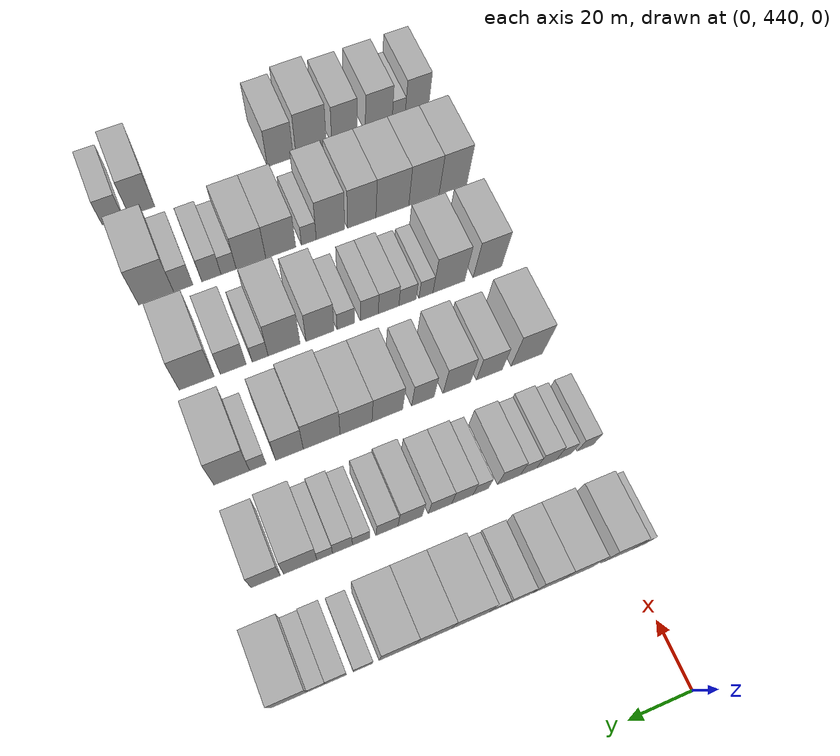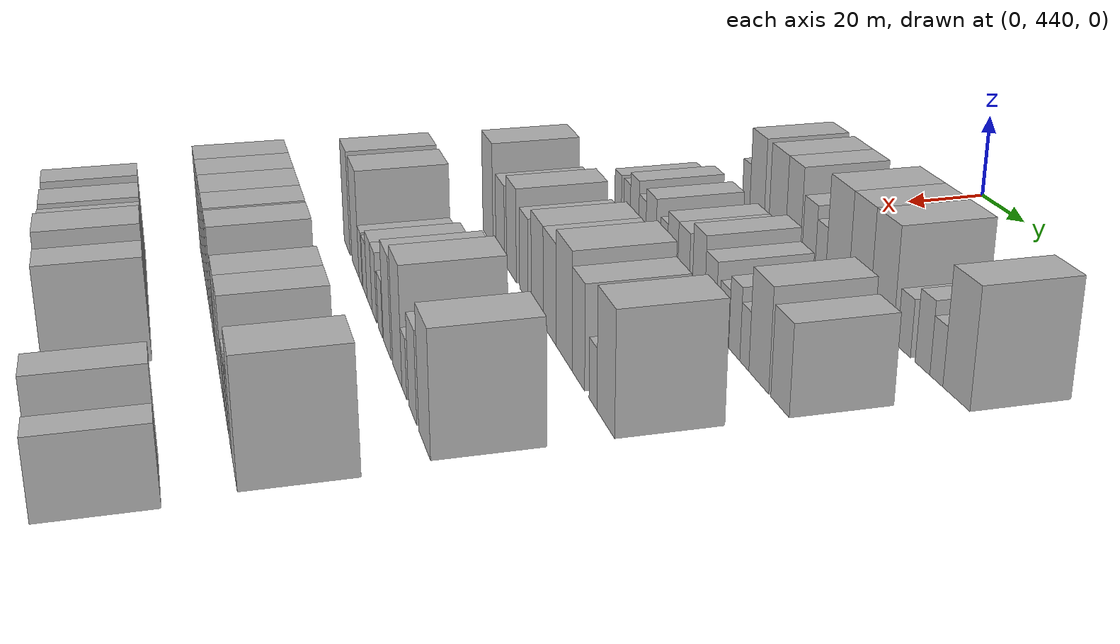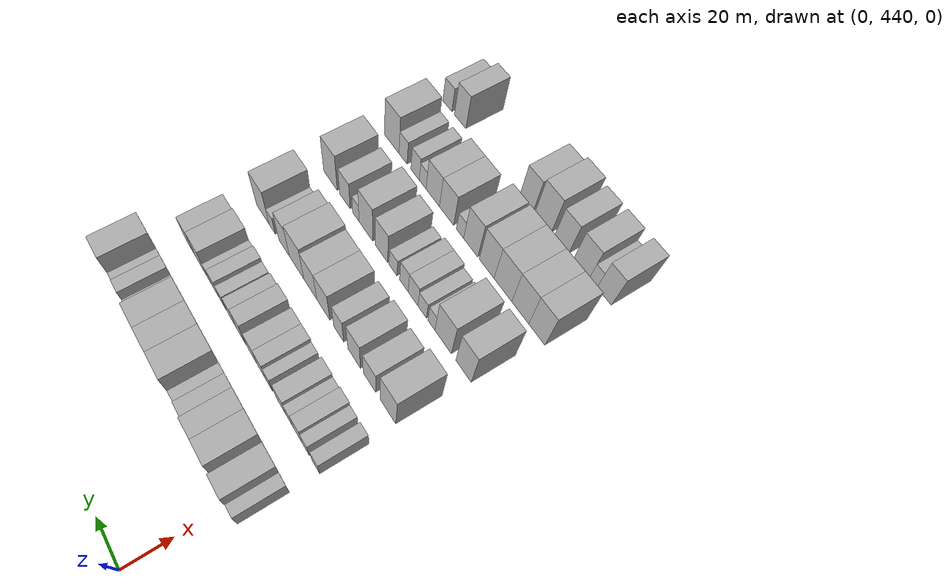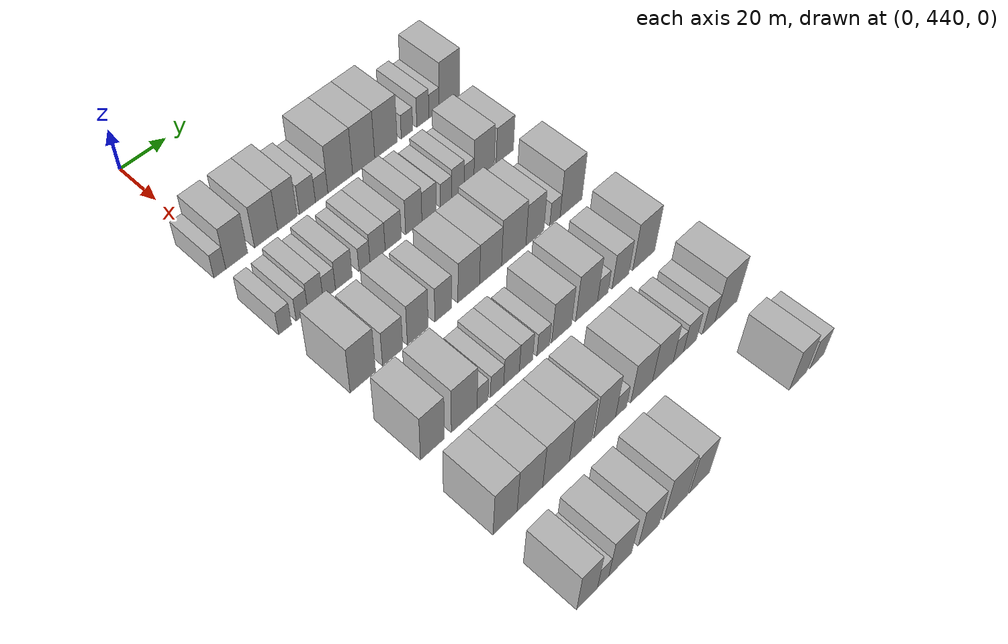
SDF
<sdf version="1.6">
 <world name="default">
  <model name="building_105">
   <static>1</static>
   <pose>50.0000 435.1691 0 0.000000 0.000000 0.000000</pose>
   <link name="link">
    <pose>0 0 6.00 0 0 0</pose>
    <collision name="collision"><geometry><box><size>20.0000 5.0527 12.0000</size></box></geometry></collision>
    <visual name="visual">
     <cast_shadows>0</cast_shadows>
     <geometry><box><size>20.0000 5.0527 12.0000</size></box></geometry>
     <material>
      <script>
       <uri>model://HANNAS_wall/materials/scripts</uri>
       <uri>model://HANNAS_wall/materials/textures</uri>
       <name>vrc/HANNAS_wall</name>
      </script>
     </material>
    </visual>
   </link>
  </model>
  <model name="building_106">
   <static>1</static>
   <pose>50.0000 442.3966 0 0.000000 0.000000 0.000000</pose>
   <link name="link">
    <pose>0 0 10.50 0 0 0</pose>
    <collision name="collision"><geometry><box><size>20.0000 9.4024 21.0000</size></box></geometry></collision>
    <visual name="visual">
     <cast_shadows>0</cast_shadows>
     <geometry><box><size>20.0000 9.4024 21.0000</size></box></geometry>
     <material>
      <script>
       <uri>model://HANNAS_wall/materials/scripts</uri>
       <uri>model://HANNAS_wall/materials/textures</uri>
       <name>vrc/HANNAS_wall</name>
      </script>
     </material>
    </visual>
   </link>
  </model>
  <model name="building_107">
   <static>1</static>
   <pose>50.0000 455.2116 0 0.000000 0.000000 0.000000</pose>
   <link name="link">
    <pose>0 0 10.50 0 0 0</pose>
    <collision name="collision"><geometry><box><size>20.0000 10.2276 21.0000</size></box></geometry></collision>
    <visual name="visual">
     <cast_shadows>0</cast_shadows>
     <geometry><box><size>20.0000 10.2276 21.0000</size></box></geometry>
     <material>
      <script>
       <uri>model://HANNAS_wall/materials/scripts</uri>
       <uri>model://HANNAS_wall/materials/textures</uri>
       <name>vrc/HANNAS_wall</name>
      </script>
     </material>
    </visual>
   </link>
  </model>
  <model name="building_108">
   <static>1</static>
   <pose>50.0000 464.6808 0 0.000000 0.000000 0.000000</pose>
   <link name="link">
    <pose>0 0 10.50 0 0 0</pose>
    <collision name="collision"><geometry><box><size>20.0000 8.7109 21.0000</size></box></geometry></collision>
    <visual name="visual">
     <cast_shadows>0</cast_shadows>
     <geometry><box><size>20.0000 8.7109 21.0000</size></box></geometry>
     <material>
      <script>
       <uri>model://HANNAS_wall/materials/scripts</uri>
       <uri>model://HANNAS_wall/materials/textures</uri>
       <name>vrc/HANNAS_wall</name>
      </script>
     </material>
    </visual>
   </link>
  </model>
  <model name="building_109">
   <static>1</static>
   <pose>50.0000 473.7226 0 0.000000 0.000000 0.000000</pose>
   <link name="link">
    <pose>0 0 7.50 0 0 0</pose>
    <collision name="collision"><geometry><box><size>20.0000 7.3727 15.0000</size></box></geometry></collision>
    <visual name="visual">
     <cast_shadows>0</cast_shadows>
     <geometry><box><size>20.0000 7.3727 15.0000</size></box></geometry>
     <material>
      <script>
       <uri>model://HANNAS_wall/materials/scripts</uri>
       <uri>model://HANNAS_wall/materials/textures</uri>
       <name>vrc/HANNAS_wall</name>
      </script>
     </material>
    </visual>
   </link>
  </model>
  <model name="building_110">
   <static>1</static>
   <pose>50.0000 480.2640 0 0.000000 0.000000 0.000000</pose>
   <link name="link">
    <pose>0 0 6.00 0 0 0</pose>
    <collision name="collision"><geometry><box><size>20.0000 5.7101 12.0000</size></box></geometry></collision>
    <visual name="visual">
     <cast_shadows>0</cast_shadows>
     <geometry><box><size>20.0000 5.7101 12.0000</size></box></geometry>
     <material>
      <script>
       <uri>model://HANNAS_wall/materials/scripts</uri>
       <uri>model://HANNAS_wall/materials/textures</uri>
       <name>vrc/HANNAS_wall</name>
      </script>
     </material>
    </visual>
   </link>
  </model>
  <model name="building_111">
   <static>1</static>
   <pose>50.0000 488.9428 0 0.000000 0.000000 0.000000</pose>
   <link name="link">
    <pose>0 0 12.00 0 0 0</pose>
    <collision name="collision"><geometry><box><size>20.0000 11.6475 24.0000</size></box></geometry></collision>
    <visual name="visual">
     <cast_shadows>0</cast_shadows>
     <geometry><box><size>20.0000 11.6475 24.0000</size></box></geometry>
     <material>
      <script>
       <uri>model://HANNAS_wall/materials/scripts</uri>
       <uri>model://HANNAS_wall/materials/textures</uri>
       <name>vrc/HANNAS_wall</name>
      </script>
     </material>
    </visual>
   </link>
  </model>
  <model name="building_112">
   <static>1</static>
   <pose>50.0000 500.0550 0 0.000000 0.000000 0.000000</pose>
   <link name="link">
    <pose>0 0 12.00 0 0 0</pose>
    <collision name="collision"><geometry><box><size>20.0000 10.5769 24.0000</size></box></geometry></collision>
    <visual name="visual">
     <cast_shadows>0</cast_shadows>
     <geometry><box><size>20.0000 10.5769 24.0000</size></box></geometry>
     <material>
      <script>
       <uri>model://HANNAS_wall/materials/scripts</uri>
       <uri>model://HANNAS_wall/materials/textures</uri>
       <name>vrc/HANNAS_wall</name>
      </script>
     </material>
    </visual>
   </link>
  </model>
  <model name="building_113">
   <static>1</static>
   <pose>50.0000 510.8159 0 0.000000 0.000000 0.000000</pose>
   <link name="link">
    <pose>0 0 12.00 0 0 0</pose>
    <collision name="collision"><geometry><box><size>20.0000 10.9450 24.0000</size></box></geometry></collision>
    <visual name="visual">
     <cast_shadows>0</cast_shadows>
     <geometry><box><size>20.0000 10.9450 24.0000</size></box></geometry>
     <material>
      <script>
       <uri>model://HANNAS_wall/materials/scripts</uri>
       <uri>model://HANNAS_wall/materials/textures</uri>
       <name>vrc/HANNAS_wall</name>
      </script>
     </material>
    </visual>
   </link>
  </model>
  <model name="building_114">
   <static>1</static>
   <pose>50.0000 521.1553 0 0.000000 0.000000 0.000000</pose>
   <link name="link">
    <pose>0 0 6.00 0 0 0</pose>
    <collision name="collision"><geometry><box><size>20.0000 5.7338 12.0000</size></box></geometry></collision>
    <visual name="visual">
     <cast_shadows>0</cast_shadows>
     <geometry><box><size>20.0000 5.7338 12.0000</size></box></geometry>
     <material>
      <script>
       <uri>model://HANNAS_wall/materials/scripts</uri>
       <uri>model://HANNAS_wall/materials/textures</uri>
       <name>vrc/HANNAS_wall</name>
      </script>
     </material>
    </visual>
   </link>
  </model>
  <model name="building_115">
   <static>1</static>
   <pose>50.0000 529.0834 0 0.000000 0.000000 0.000000</pose>
   <link name="link">
    <pose>0 0 7.50 0 0 0</pose>
    <collision name="collision"><geometry><box><size>20.0000 6.1225 15.0000</size></box></geometry></collision>
    <visual name="visual">
     <cast_shadows>0</cast_shadows>
     <geometry><box><size>20.0000 6.1225 15.0000</size></box></geometry>
     <material>
      <script>
       <uri>model://HANNAS_wall/materials/scripts</uri>
       <uri>model://HANNAS_wall/materials/textures</uri>
       <name>vrc/HANNAS_wall</name>
      </script>
     </material>
    </visual>
   </link>
  </model>
  <model name="building_116">
   <static>1</static>
   <pose>50.0000 534.7578 0 0.000000 0.000000 0.000000</pose>
   <link name="link">
    <pose>0 0 6.00 0 0 0</pose>
    <collision name="collision"><geometry><box><size>20.0000 5.2263 12.0000</size></box></geometry></collision>
    <visual name="visual">
     <cast_shadows>0</cast_shadows>
     <geometry><box><size>20.0000 5.2263 12.0000</size></box></geometry>
     <material>
      <script>
       <uri>model://HANNAS_wall/materials/scripts</uri>
       <uri>model://HANNAS_wall/materials/textures</uri>
       <name>vrc/HANNAS_wall</name>
      </script>
     </material>
    </visual>
   </link>
  </model>
  <model name="building_117">
   <static>1</static>
   <pose>50.0000 542.5937 0 0.000000 0.000000 0.000000</pose>
   <link name="link">
    <pose>0 0 12.00 0 0 0</pose>
    <collision name="collision"><geometry><box><size>20.0000 10.4457 24.0000</size></box></geometry></collision>
    <visual name="visual">
     <cast_shadows>0</cast_shadows>
     <geometry><box><size>20.0000 10.4457 24.0000</size></box></geometry>
     <material>
      <script>
       <uri>model://HANNAS_wall/materials/scripts</uri>
       <uri>model://HANNAS_wall/materials/textures</uri>
       <name>vrc/HANNAS_wall</name>
      </script>
     </material>
    </visual>
   </link>
  </model>
  <model name="building_230">
   <static>1</static>
   <pose>82.0000 435.4607 0 0.000000 0.000000 0.000000</pose>
   <link name="link">
    <pose>0 0 6.00 0 0 0</pose>
    <collision name="collision"><geometry><box><size>20.0000 5.4449 12.0000</size></box></geometry></collision>
    <visual name="visual">
     <cast_shadows>0</cast_shadows>
     <geometry><box><size>20.0000 5.4449 12.0000</size></box></geometry>
     <material>
      <script>
       <uri>model://HANNAS_wall/materials/scripts</uri>
       <uri>model://HANNAS_wall/materials/textures</uri>
       <name>vrc/HANNAS_wall</name>
      </script>
     </material>
    </visual>
   </link>
  </model>
  <model name="building_231">
   <static>1</static>
   <pose>82.0000 442.7251 0 0.000000 0.000000 0.000000</pose>
   <link name="link">
    <pose>0 0 6.00 0 0 0</pose>
    <collision name="collision"><geometry><box><size>20.0000 5.0838 12.0000</size></box></geometry></collision>
    <visual name="visual">
     <cast_shadows>0</cast_shadows>
     <geometry><box><size>20.0000 5.0838 12.0000</size></box></geometry>
     <material>
      <script>
       <uri>model://HANNAS_wall/materials/scripts</uri>
       <uri>model://HANNAS_wall/materials/textures</uri>
       <name>vrc/HANNAS_wall</name>
      </script>
     </material>
    </visual>
   </link>
  </model>
  <model name="building_232">
   <static>1</static>
   <pose>82.0000 448.5556 0 0.000000 0.000000 0.000000</pose>
   <link name="link">
    <pose>0 0 7.50 0 0 0</pose>
    <collision name="collision"><geometry><box><size>20.0000 6.5772 15.0000</size></box></geometry></collision>
    <visual name="visual">
     <cast_shadows>0</cast_shadows>
     <geometry><box><size>20.0000 6.5772 15.0000</size></box></geometry>
     <material>
      <script>
       <uri>model://HANNAS_wall/materials/scripts</uri>
       <uri>model://HANNAS_wall/materials/textures</uri>
       <name>vrc/HANNAS_wall</name>
      </script>
     </material>
    </visual>
   </link>
  </model>
  <model name="building_233">
   <static>1</static>
   <pose>82.0000 454.5484 0 0.000000 0.000000 0.000000</pose>
   <link name="link">
    <pose>0 0 6.00 0 0 0</pose>
    <collision name="collision"><geometry><box><size>20.0000 5.4084 12.0000</size></box></geometry></collision>
    <visual name="visual">
     <cast_shadows>0</cast_shadows>
     <geometry><box><size>20.0000 5.4084 12.0000</size></box></geometry>
     <material>
      <script>
       <uri>model://HANNAS_wall/materials/scripts</uri>
       <uri>model://HANNAS_wall/materials/textures</uri>
       <name>vrc/HANNAS_wall</name>
      </script>
     </material>
    </visual>
   </link>
  </model>
  <model name="building_234">
   <static>1</static>
   <pose>82.0000 460.9806 0 0.000000 0.000000 0.000000</pose>
   <link name="link">
    <pose>0 0 7.50 0 0 0</pose>
    <collision name="collision"><geometry><box><size>20.0000 7.4559 15.0000</size></box></geometry></collision>
    <visual name="visual">
     <cast_shadows>0</cast_shadows>
     <geometry><box><size>20.0000 7.4559 15.0000</size></box></geometry>
     <material>
      <script>
       <uri>model://HANNAS_wall/materials/scripts</uri>
       <uri>model://HANNAS_wall/materials/textures</uri>
       <name>vrc/HANNAS_wall</name>
      </script>
     </material>
    </visual>
   </link>
  </model>
  <model name="building_235">
   <static>1</static>
   <pose>82.0000 470.1993 0 0.000000 0.000000 0.000000</pose>
   <link name="link">
    <pose>0 0 6.00 0 0 0</pose>
    <collision name="collision"><geometry><box><size>20.0000 4.9816 12.0000</size></box></geometry></collision>
    <visual name="visual">
     <cast_shadows>0</cast_shadows>
     <geometry><box><size>20.0000 4.9816 12.0000</size></box></geometry>
     <material>
      <script>
       <uri>model://HANNAS_wall/materials/scripts</uri>
       <uri>model://HANNAS_wall/materials/textures</uri>
       <name>vrc/HANNAS_wall</name>
      </script>
     </material>
    </visual>
   </link>
  </model>
  <model name="building_236">
   <static>1</static>
   <pose>82.0000 476.1757 0 0.000000 0.000000 0.000000</pose>
   <link name="link">
    <pose>0 0 7.50 0 0 0</pose>
    <collision name="collision"><geometry><box><size>20.0000 6.9712 15.0000</size></box></geometry></collision>
    <visual name="visual">
     <cast_shadows>0</cast_shadows>
     <geometry><box><size>20.0000 6.9712 15.0000</size></box></geometry>
     <material>
      <script>
       <uri>model://HANNAS_wall/materials/scripts</uri>
       <uri>model://HANNAS_wall/materials/textures</uri>
       <name>vrc/HANNAS_wall</name>
      </script>
     </material>
    </visual>
   </link>
  </model>
  <model name="building_237">
   <static>1</static>
   <pose>82.0000 483.4070 0 0.000000 0.000000 0.000000</pose>
   <link name="link">
    <pose>0 0 7.50 0 0 0</pose>
    <collision name="collision"><geometry><box><size>20.0000 7.4914 15.0000</size></box></geometry></collision>
    <visual name="visual">
     <cast_shadows>0</cast_shadows>
     <geometry><box><size>20.0000 7.4914 15.0000</size></box></geometry>
     <material>
      <script>
       <uri>model://HANNAS_wall/materials/scripts</uri>
       <uri>model://HANNAS_wall/materials/textures</uri>
       <name>vrc/HANNAS_wall</name>
      </script>
     </material>
    </visual>
   </link>
  </model>
  <model name="building_238">
   <static>1</static>
   <pose>82.0000 492.9953 0 0.000000 0.000000 0.000000</pose>
   <link name="link">
    <pose>0 0 9.00 0 0 0</pose>
    <collision name="collision"><geometry><box><size>20.0000 7.6852 18.0000</size></box></geometry></collision>
    <visual name="visual">
     <cast_shadows>0</cast_shadows>
     <geometry><box><size>20.0000 7.6852 18.0000</size></box></geometry>
     <material>
      <script>
       <uri>model://HANNAS_wall/materials/scripts</uri>
       <uri>model://HANNAS_wall/materials/textures</uri>
       <name>vrc/HANNAS_wall</name>
      </script>
     </material>
    </visual>
   </link>
  </model>
  <model name="building_239">
   <static>1</static>
   <pose>82.0000 500.2824 0 0.000000 0.000000 0.000000</pose>
   <link name="link">
    <pose>0 0 7.50 0 0 0</pose>
    <collision name="collision"><geometry><box><size>20.0000 6.8890 15.0000</size></box></geometry></collision>
    <visual name="visual">
     <cast_shadows>0</cast_shadows>
     <geometry><box><size>20.0000 6.8890 15.0000</size></box></geometry>
     <material>
      <script>
       <uri>model://HANNAS_wall/materials/scripts</uri>
       <uri>model://HANNAS_wall/materials/textures</uri>
       <name>vrc/HANNAS_wall</name>
      </script>
     </material>
    </visual>
   </link>
  </model>
  <model name="building_240">
   <static>1</static>
   <pose>82.0000 508.4409 0 0.000000 0.000000 0.000000</pose>
   <link name="link">
    <pose>0 0 6.00 0 0 0</pose>
    <collision name="collision"><geometry><box><size>20.0000 5.4280 12.0000</size></box></geometry></collision>
    <visual name="visual">
     <cast_shadows>0</cast_shadows>
     <geometry><box><size>20.0000 5.4280 12.0000</size></box></geometry>
     <material>
      <script>
       <uri>model://HANNAS_wall/materials/scripts</uri>
       <uri>model://HANNAS_wall/materials/textures</uri>
       <name>vrc/HANNAS_wall</name>
      </script>
     </material>
    </visual>
   </link>
  </model>
  <model name="building_241">
   <static>1</static>
   <pose>82.0000 514.2298 0 0.000000 0.000000 0.000000</pose>
   <link name="link">
    <pose>0 0 7.50 0 0 0</pose>
    <collision name="collision"><geometry><box><size>20.0000 6.1500 15.0000</size></box></geometry></collision>
    <visual name="visual">
     <cast_shadows>0</cast_shadows>
     <geometry><box><size>20.0000 6.1500 15.0000</size></box></geometry>
     <material>
      <script>
       <uri>model://HANNAS_wall/materials/scripts</uri>
       <uri>model://HANNAS_wall/materials/textures</uri>
       <name>vrc/HANNAS_wall</name>
      </script>
     </material>
    </visual>
   </link>
  </model>
  <model name="building_242">
   <static>1</static>
   <pose>82.0000 519.7227 0 0.000000 0.000000 0.000000</pose>
   <link name="link">
    <pose>0 0 6.00 0 0 0</pose>
    <collision name="collision"><geometry><box><size>20.0000 4.8358 12.0000</size></box></geometry></collision>
    <visual name="visual">
     <cast_shadows>0</cast_shadows>
     <geometry><box><size>20.0000 4.8358 12.0000</size></box></geometry>
     <material>
      <script>
       <uri>model://HANNAS_wall/materials/scripts</uri>
       <uri>model://HANNAS_wall/materials/textures</uri>
       <name>vrc/HANNAS_wall</name>
      </script>
     </material>
    </visual>
   </link>
  </model>
  <model name="building_243">
   <static>1</static>
   <pose>82.0000 527.2332 0 0.000000 0.000000 0.000000</pose>
   <link name="link">
    <pose>0 0 10.50 0 0 0</pose>
    <collision name="collision"><geometry><box><size>20.0000 10.1850 21.0000</size></box></geometry></collision>
    <visual name="visual">
     <cast_shadows>0</cast_shadows>
     <geometry><box><size>20.0000 10.1850 21.0000</size></box></geometry>
     <material>
      <script>
       <uri>model://HANNAS_wall/materials/scripts</uri>
       <uri>model://HANNAS_wall/materials/textures</uri>
       <name>vrc/HANNAS_wall</name>
      </script>
     </material>
    </visual>
   </link>
  </model>
  <model name="building_244">
   <static>1</static>
   <pose>82.0000 537.7603 0 0.000000 0.000000 0.000000</pose>
   <link name="link">
    <pose>0 0 9.00 0 0 0</pose>
    <collision name="collision"><geometry><box><size>20.0000 8.8693 18.0000</size></box></geometry></collision>
    <visual name="visual">
     <cast_shadows>0</cast_shadows>
     <geometry><box><size>20.0000 8.8693 18.0000</size></box></geometry>
     <material>
      <script>
       <uri>model://HANNAS_wall/materials/scripts</uri>
       <uri>model://HANNAS_wall/materials/textures</uri>
       <name>vrc/HANNAS_wall</name>
      </script>
     </material>
    </visual>
   </link>
  </model>
  <model name="building_346">
   <static>1</static>
   <pose>114.0000 439.3282 0 0.000000 0.000000 0.000000</pose>
   <link name="link">
    <pose>0 0 12.00 0 0 0</pose>
    <collision name="collision"><geometry><box><size>20.0000 10.8112 24.0000</size></box></geometry></collision>
    <visual name="visual">
     <cast_shadows>0</cast_shadows>
     <geometry><box><size>20.0000 10.8112 24.0000</size></box></geometry>
     <material>
      <script>
       <uri>model://HANNAS_wall/materials/scripts</uri>
       <uri>model://HANNAS_wall/materials/textures</uri>
       <name>vrc/HANNAS_wall</name>
      </script>
     </material>
    </visual>
   </link>
  </model>
  <model name="building_347">
   <static>1</static>
   <pose>114.0000 452.1567 0 0.000000 0.000000 0.000000</pose>
   <link name="link">
    <pose>0 0 9.00 0 0 0</pose>
    <collision name="collision"><geometry><box><size>20.0000 8.8458 18.0000</size></box></geometry></collision>
    <visual name="visual">
     <cast_shadows>0</cast_shadows>
     <geometry><box><size>20.0000 8.8458 18.0000</size></box></geometry>
     <material>
      <script>
       <uri>model://HANNAS_wall/materials/scripts</uri>
       <uri>model://HANNAS_wall/materials/textures</uri>
       <name>vrc/HANNAS_wall</name>
      </script>
     </material>
    </visual>
   </link>
  </model>
  <model name="building_348">
   <static>1</static>
   <pose>114.0000 463.2257 0 0.000000 0.000000 0.000000</pose>
   <link name="link">
    <pose>0 0 10.50 0 0 0</pose>
    <collision name="collision"><geometry><box><size>20.0000 9.2924 21.0000</size></box></geometry></collision>
    <visual name="visual">
     <cast_shadows>0</cast_shadows>
     <geometry><box><size>20.0000 9.2924 21.0000</size></box></geometry>
     <material>
      <script>
       <uri>model://HANNAS_wall/materials/scripts</uri>
       <uri>model://HANNAS_wall/materials/textures</uri>
       <name>vrc/HANNAS_wall</name>
      </script>
     </material>
    </visual>
   </link>
  </model>
  <model name="building_349">
   <static>1</static>
   <pose>114.0000 474.6399 0 0.000000 0.000000 0.000000</pose>
   <link name="link">
    <pose>0 0 9.00 0 0 0</pose>
    <collision name="collision"><geometry><box><size>20.0000 7.5361 18.0000</size></box></geometry></collision>
    <visual name="visual">
     <cast_shadows>0</cast_shadows>
     <geometry><box><size>20.0000 7.5361 18.0000</size></box></geometry>
     <material>
      <script>
       <uri>model://HANNAS_wall/materials/scripts</uri>
       <uri>model://HANNAS_wall/materials/textures</uri>
       <name>vrc/HANNAS_wall</name>
      </script>
     </material>
    </visual>
   </link>
  </model>
  <model name="building_350">
   <static>1</static>
   <pose>114.0000 486.4588 0 0.000000 0.000000 0.000000</pose>
   <link name="link">
    <pose>0 0 10.50 0 0 0</pose>
    <collision name="collision"><geometry><box><size>20.0000 10.1016 21.0000</size></box></geometry></collision>
    <visual name="visual">
     <cast_shadows>0</cast_shadows>
     <geometry><box><size>20.0000 10.1016 21.0000</size></box></geometry>
     <material>
      <script>
       <uri>model://HANNAS_wall/materials/scripts</uri>
       <uri>model://HANNAS_wall/materials/textures</uri>
       <name>vrc/HANNAS_wall</name>
      </script>
     </material>
    </visual>
   </link>
  </model>
  <model name="building_351">
   <static>1</static>
   <pose>114.0000 496.7394 0 0.000000 0.000000 0.000000</pose>
   <link name="link">
    <pose>0 0 10.50 0 0 0</pose>
    <collision name="collision"><geometry><box><size>20.0000 10.4596 21.0000</size></box></geometry></collision>
    <visual name="visual">
     <cast_shadows>0</cast_shadows>
     <geometry><box><size>20.0000 10.4596 21.0000</size></box></geometry>
     <material>
      <script>
       <uri>model://HANNAS_wall/materials/scripts</uri>
       <uri>model://HANNAS_wall/materials/textures</uri>
       <name>vrc/HANNAS_wall</name>
      </script>
     </material>
    </visual>
   </link>
  </model>
  <model name="building_352">
   <static>1</static>
   <pose>114.0000 507.9000 0 0.000000 0.000000 0.000000</pose>
   <link name="link">
    <pose>0 0 12.00 0 0 0</pose>
    <collision name="collision"><geometry><box><size>20.0000 11.8617 24.0000</size></box></geometry></collision>
    <visual name="visual">
     <cast_shadows>0</cast_shadows>
     <geometry><box><size>20.0000 11.8617 24.0000</size></box></geometry>
     <material>
      <script>
       <uri>model://HANNAS_wall/materials/scripts</uri>
       <uri>model://HANNAS_wall/materials/textures</uri>
       <name>vrc/HANNAS_wall</name>
      </script>
     </material>
    </visual>
   </link>
  </model>
  <model name="building_353">
   <static>1</static>
   <pose>114.0000 518.2816 0 0.000000 0.000000 0.000000</pose>
   <link name="link">
    <pose>0 0 10.50 0 0 0</pose>
    <collision name="collision"><geometry><box><size>20.0000 8.9016 21.0000</size></box></geometry></collision>
    <visual name="visual">
     <cast_shadows>0</cast_shadows>
     <geometry><box><size>20.0000 8.9016 21.0000</size></box></geometry>
     <material>
      <script>
       <uri>model://HANNAS_wall/materials/scripts</uri>
       <uri>model://HANNAS_wall/materials/textures</uri>
       <name>vrc/HANNAS_wall</name>
      </script>
     </material>
    </visual>
   </link>
  </model>
  <model name="building_354">
   <static>1</static>
   <pose>114.0000 528.3449 0 0.000000 0.000000 0.000000</pose>
   <link name="link">
    <pose>0 0 6.00 0 0 0</pose>
    <collision name="collision"><geometry><box><size>20.0000 5.2250 12.0000</size></box></geometry></collision>
    <visual name="visual">
     <cast_shadows>0</cast_shadows>
     <geometry><box><size>20.0000 5.2250 12.0000</size></box></geometry>
     <material>
      <script>
       <uri>model://HANNAS_wall/materials/scripts</uri>
       <uri>model://HANNAS_wall/materials/textures</uri>
       <name>vrc/HANNAS_wall</name>
      </script>
     </material>
    </visual>
   </link>
  </model>
  <model name="building_355">
   <static>1</static>
   <pose>114.0000 536.5855 0 0.000000 0.000000 0.000000</pose>
   <link name="link">
    <pose>0 0 12.00 0 0 0</pose>
    <collision name="collision"><geometry><box><size>20.0000 11.2561 24.0000</size></box></geometry></collision>
    <visual name="visual">
     <cast_shadows>0</cast_shadows>
     <geometry><box><size>20.0000 11.2561 24.0000</size></box></geometry>
     <material>
      <script>
       <uri>model://HANNAS_wall/materials/scripts</uri>
       <uri>model://HANNAS_wall/materials/textures</uri>
       <name>vrc/HANNAS_wall</name>
      </script>
     </material>
    </visual>
   </link>
  </model>
  <model name="building_461">
   <static>1</static>
   <pose>146.0000 437.6826 0 0.000000 0.000000 0.000000</pose>
   <link name="link">
    <pose>0 0 12.00 0 0 0</pose>
    <collision name="collision"><geometry><box><size>20.0000 10.0944 24.0000</size></box></geometry></collision>
    <visual name="visual">
     <cast_shadows>0</cast_shadows>
     <geometry><box><size>20.0000 10.0944 24.0000</size></box></geometry>
     <material>
      <script>
       <uri>model://HANNAS_wall/materials/scripts</uri>
       <uri>model://HANNAS_wall/materials/textures</uri>
       <name>vrc/HANNAS_wall</name>
      </script>
     </material>
    </visual>
   </link>
  </model>
  <model name="building_462">
   <static>1</static>
   <pose>146.0000 451.3264 0 0.000000 0.000000 0.000000</pose>
   <link name="link">
    <pose>0 0 12.00 0 0 0</pose>
    <collision name="collision"><geometry><box><size>20.0000 11.1932 24.0000</size></box></geometry></collision>
    <visual name="visual">
     <cast_shadows>0</cast_shadows>
     <geometry><box><size>20.0000 11.1932 24.0000</size></box></geometry>
     <material>
      <script>
       <uri>model://HANNAS_wall/materials/scripts</uri>
       <uri>model://HANNAS_wall/materials/textures</uri>
       <name>vrc/HANNAS_wall</name>
      </script>
     </material>
    </visual>
   </link>
  </model>
  <model name="building_463">
   <static>1</static>
   <pose>146.0000 459.3672 0 0.000000 0.000000 0.000000</pose>
   <link name="link">
    <pose>0 0 6.00 0 0 0</pose>
    <collision name="collision"><geometry><box><size>20.0000 4.8883 12.0000</size></box></geometry></collision>
    <visual name="visual">
     <cast_shadows>0</cast_shadows>
     <geometry><box><size>20.0000 4.8883 12.0000</size></box></geometry>
     <material>
      <script>
       <uri>model://HANNAS_wall/materials/scripts</uri>
       <uri>model://HANNAS_wall/materials/textures</uri>
       <name>vrc/HANNAS_wall</name>
      </script>
     </material>
    </visual>
   </link>
  </model>
  <model name="building_464">
   <static>1</static>
   <pose>146.0000 465.8068 0 0.000000 0.000000 0.000000</pose>
   <link name="link">
    <pose>0 0 6.00 0 0 0</pose>
    <collision name="collision"><geometry><box><size>20.0000 5.9910 12.0000</size></box></geometry></collision>
    <visual name="visual">
     <cast_shadows>0</cast_shadows>
     <geometry><box><size>20.0000 5.9910 12.0000</size></box></geometry>
     <material>
      <script>
       <uri>model://HANNAS_wall/materials/scripts</uri>
       <uri>model://HANNAS_wall/materials/textures</uri>
       <name>vrc/HANNAS_wall</name>
      </script>
     </material>
    </visual>
   </link>
  </model>
  <model name="building_465">
   <static>1</static>
   <pose>146.0000 472.3639 0 0.000000 0.000000 0.000000</pose>
   <link name="link">
    <pose>0 0 7.50 0 0 0</pose>
    <collision name="collision"><geometry><box><size>20.0000 7.1232 15.0000</size></box></geometry></collision>
    <visual name="visual">
     <cast_shadows>0</cast_shadows>
     <geometry><box><size>20.0000 7.1232 15.0000</size></box></geometry>
     <material>
      <script>
       <uri>model://HANNAS_wall/materials/scripts</uri>
       <uri>model://HANNAS_wall/materials/textures</uri>
       <name>vrc/HANNAS_wall</name>
      </script>
     </material>
    </visual>
   </link>
  </model>
  <model name="building_466">
   <static>1</static>
   <pose>146.0000 478.9979 0 0.000000 0.000000 0.000000</pose>
   <link name="link">
    <pose>0 0 7.50 0 0 0</pose>
    <collision name="collision"><geometry><box><size>20.0000 6.1448 15.0000</size></box></geometry></collision>
    <visual name="visual">
     <cast_shadows>0</cast_shadows>
     <geometry><box><size>20.0000 6.1448 15.0000</size></box></geometry>
     <material>
      <script>
       <uri>model://HANNAS_wall/materials/scripts</uri>
       <uri>model://HANNAS_wall/materials/textures</uri>
       <name>vrc/HANNAS_wall</name>
      </script>
     </material>
    </visual>
   </link>
  </model>
  <model name="building_467">
   <static>1</static>
   <pose>146.0000 487.0285 0 0.000000 0.000000 0.000000</pose>
   <link name="link">
    <pose>0 0 6.00 0 0 0</pose>
    <collision name="collision"><geometry><box><size>20.0000 5.9164 12.0000</size></box></geometry></collision>
    <visual name="visual">
     <cast_shadows>0</cast_shadows>
     <geometry><box><size>20.0000 5.9164 12.0000</size></box></geometry>
     <material>
      <script>
       <uri>model://HANNAS_wall/materials/scripts</uri>
       <uri>model://HANNAS_wall/materials/textures</uri>
       <name>vrc/HANNAS_wall</name>
      </script>
     </material>
    </visual>
   </link>
  </model>
  <model name="building_468">
   <static>1</static>
   <pose>146.0000 495.7210 0 0.000000 0.000000 0.000000</pose>
   <link name="link">
    <pose>0 0 10.50 0 0 0</pose>
    <collision name="collision"><geometry><box><size>20.0000 9.4688 21.0000</size></box></geometry></collision>
    <visual name="visual">
     <cast_shadows>0</cast_shadows>
     <geometry><box><size>20.0000 9.4688 21.0000</size></box></geometry>
     <material>
      <script>
       <uri>model://HANNAS_wall/materials/scripts</uri>
       <uri>model://HANNAS_wall/materials/textures</uri>
       <name>vrc/HANNAS_wall</name>
      </script>
     </material>
    </visual>
   </link>
  </model>
  <model name="building_469">
   <static>1</static>
   <pose>146.0000 507.7961 0 0.000000 0.000000 0.000000</pose>
   <link name="link">
    <pose>0 0 12.00 0 0 0</pose>
    <collision name="collision"><geometry><box><size>20.0000 10.6814 24.0000</size></box></geometry></collision>
    <visual name="visual">
     <cast_shadows>0</cast_shadows>
     <geometry><box><size>20.0000 10.6814 24.0000</size></box></geometry>
     <material>
      <script>
       <uri>model://HANNAS_wall/materials/scripts</uri>
       <uri>model://HANNAS_wall/materials/textures</uri>
       <name>vrc/HANNAS_wall</name>
      </script>
     </material>
    </visual>
   </link>
  </model>
  <model name="building_470">
   <static>1</static>
   <pose>146.0000 515.7734 0 0.000000 0.000000 0.000000</pose>
   <link name="link">
    <pose>0 0 6.00 0 0 0</pose>
    <collision name="collision"><geometry><box><size>20.0000 5.2732 12.0000</size></box></geometry></collision>
    <visual name="visual">
     <cast_shadows>0</cast_shadows>
     <geometry><box><size>20.0000 5.2732 12.0000</size></box></geometry>
     <material>
      <script>
       <uri>model://HANNAS_wall/materials/scripts</uri>
       <uri>model://HANNAS_wall/materials/textures</uri>
       <name>vrc/HANNAS_wall</name>
      </script>
     </material>
    </visual>
   </link>
  </model>
  <model name="building_471">
   <static>1</static>
   <pose>146.0000 524.6533 0 0.000000 0.000000 0.000000</pose>
   <link name="link">
    <pose>0 0 9.00 0 0 0</pose>
    <collision name="collision"><geometry><box><size>20.0000 8.4866 18.0000</size></box></geometry></collision>
    <visual name="visual">
     <cast_shadows>0</cast_shadows>
     <geometry><box><size>20.0000 8.4866 18.0000</size></box></geometry>
     <material>
      <script>
       <uri>model://HANNAS_wall/materials/scripts</uri>
       <uri>model://HANNAS_wall/materials/textures</uri>
       <name>vrc/HANNAS_wall</name>
      </script>
     </material>
    </visual>
   </link>
  </model>
  <model name="building_472">
   <static>1</static>
   <pose>146.0000 536.5872 0 0.000000 0.000000 0.000000</pose>
   <link name="link">
    <pose>0 0 12.00 0 0 0</pose>
    <collision name="collision"><geometry><box><size>20.0000 11.3812 24.0000</size></box></geometry></collision>
    <visual name="visual">
     <cast_shadows>0</cast_shadows>
     <geometry><box><size>20.0000 11.3812 24.0000</size></box></geometry>
     <material>
      <script>
       <uri>model://HANNAS_wall/materials/scripts</uri>
       <uri>model://HANNAS_wall/materials/textures</uri>
       <name>vrc/HANNAS_wall</name>
      </script>
     </material>
    </visual>
   </link>
  </model>
  <model name="building_574">
   <static>1</static>
   <pose>178.0000 435.2329 0 0.000000 0.000000 0.000000</pose>
   <link name="link">
    <pose>0 0 12.00 0 0 0</pose>
    <collision name="collision"><geometry><box><size>20.0000 10.1558 24.0000</size></box></geometry></collision>
    <visual name="visual">
     <cast_shadows>0</cast_shadows>
     <geometry><box><size>20.0000 10.1558 24.0000</size></box></geometry>
     <material>
      <script>
       <uri>model://HANNAS_wall/materials/scripts</uri>
       <uri>model://HANNAS_wall/materials/textures</uri>
       <name>vrc/HANNAS_wall</name>
      </script>
     </material>
    </visual>
   </link>
  </model>
  <model name="building_575">
   <static>1</static>
   <pose>178.0000 445.8235 0 0.000000 0.000000 0.000000</pose>
   <link name="link">
    <pose>0 0 12.00 0 0 0</pose>
    <collision name="collision"><geometry><box><size>20.0000 11.0254 24.0000</size></box></geometry></collision>
    <visual name="visual">
     <cast_shadows>0</cast_shadows>
     <geometry><box><size>20.0000 11.0254 24.0000</size></box></geometry>
     <material>
      <script>
       <uri>model://HANNAS_wall/materials/scripts</uri>
       <uri>model://HANNAS_wall/materials/textures</uri>
       <name>vrc/HANNAS_wall</name>
      </script>
     </material>
    </visual>
   </link>
  </model>
  <model name="building_576">
   <static>1</static>
   <pose>178.0000 457.2601 0 0.000000 0.000000 0.000000</pose>
   <link name="link">
    <pose>0 0 12.00 0 0 0</pose>
    <collision name="collision"><geometry><box><size>20.0000 11.8478 24.0000</size></box></geometry></collision>
    <visual name="visual">
     <cast_shadows>0</cast_shadows>
     <geometry><box><size>20.0000 11.8478 24.0000</size></box></geometry>
     <material>
      <script>
       <uri>model://HANNAS_wall/materials/scripts</uri>
       <uri>model://HANNAS_wall/materials/textures</uri>
       <name>vrc/HANNAS_wall</name>
      </script>
     </material>
    </visual>
   </link>
  </model>
  <model name="building_577">
   <static>1</static>
   <pose>178.0000 468.2451 0 0.000000 0.000000 0.000000</pose>
   <link name="link">
    <pose>0 0 12.00 0 0 0</pose>
    <collision name="collision"><geometry><box><size>20.0000 10.1221 24.0000</size></box></geometry></collision>
    <visual name="visual">
     <cast_shadows>0</cast_shadows>
     <geometry><box><size>20.0000 10.1221 24.0000</size></box></geometry>
     <material>
      <script>
       <uri>model://HANNAS_wall/materials/scripts</uri>
       <uri>model://HANNAS_wall/materials/textures</uri>
       <name>vrc/HANNAS_wall</name>
      </script>
     </material>
    </visual>
   </link>
  </model>
  <model name="building_578">
   <static>1</static>
   <pose>178.0000 479.3233 0 0.000000 0.000000 0.000000</pose>
   <link name="link">
    <pose>0 0 12.00 0 0 0</pose>
    <collision name="collision"><geometry><box><size>20.0000 10.0343 24.0000</size></box></geometry></collision>
    <visual name="visual">
     <cast_shadows>0</cast_shadows>
     <geometry><box><size>20.0000 10.0343 24.0000</size></box></geometry>
     <material>
      <script>
       <uri>model://HANNAS_wall/materials/scripts</uri>
       <uri>model://HANNAS_wall/materials/textures</uri>
       <name>vrc/HANNAS_wall</name>
      </script>
     </material>
    </visual>
   </link>
  </model>
  <model name="building_579">
   <static>1</static>
   <pose>178.0000 486.9418 0 0.000000 0.000000 0.000000</pose>
   <link name="link">
    <pose>0 0 6.00 0 0 0</pose>
    <collision name="collision"><geometry><box><size>20.0000 5.2028 12.0000</size></box></geometry></collision>
    <visual name="visual">
     <cast_shadows>0</cast_shadows>
     <geometry><box><size>20.0000 5.2028 12.0000</size></box></geometry>
     <material>
      <script>
       <uri>model://HANNAS_wall/materials/scripts</uri>
       <uri>model://HANNAS_wall/materials/textures</uri>
       <name>vrc/HANNAS_wall</name>
      </script>
     </material>
    </visual>
   </link>
  </model>
  <model name="building_580">
   <static>1</static>
   <pose>178.0000 496.7550 0 0.000000 0.000000 0.000000</pose>
   <link name="link">
    <pose>0 0 10.50 0 0 0</pose>
    <collision name="collision"><geometry><box><size>20.0000 10.4237 21.0000</size></box></geometry></collision>
    <visual name="visual">
     <cast_shadows>0</cast_shadows>
     <geometry><box><size>20.0000 10.4237 21.0000</size></box></geometry>
     <material>
      <script>
       <uri>model://HANNAS_wall/materials/scripts</uri>
       <uri>model://HANNAS_wall/materials/textures</uri>
       <name>vrc/HANNAS_wall</name>
      </script>
     </material>
    </visual>
   </link>
  </model>
  <model name="building_581">
   <static>1</static>
   <pose>178.0000 507.0621 0 0.000000 0.000000 0.000000</pose>
   <link name="link">
    <pose>0 0 10.50 0 0 0</pose>
    <collision name="collision"><geometry><box><size>20.0000 10.1904 21.0000</size></box></geometry></collision>
    <visual name="visual">
     <cast_shadows>0</cast_shadows>
     <geometry><box><size>20.0000 10.1904 21.0000</size></box></geometry>
     <material>
      <script>
       <uri>model://HANNAS_wall/materials/scripts</uri>
       <uri>model://HANNAS_wall/materials/textures</uri>
       <name>vrc/HANNAS_wall</name>
      </script>
     </material>
    </visual>
   </link>
  </model>
  <model name="building_582">
   <static>1</static>
   <pose>178.0000 514.7380 0 0.000000 0.000000 0.000000</pose>
   <link name="link">
    <pose>0 0 6.00 0 0 0</pose>
    <collision name="collision"><geometry><box><size>20.0000 5.1615 12.0000</size></box></geometry></collision>
    <visual name="visual">
     <cast_shadows>0</cast_shadows>
     <geometry><box><size>20.0000 5.1615 12.0000</size></box></geometry>
     <material>
      <script>
       <uri>model://HANNAS_wall/materials/scripts</uri>
       <uri>model://HANNAS_wall/materials/textures</uri>
       <name>vrc/HANNAS_wall</name>
      </script>
     </material>
    </visual>
   </link>
  </model>
  <model name="building_583">
   <static>1</static>
   <pose>178.0000 520.5984 0 0.000000 0.000000 0.000000</pose>
   <link name="link">
    <pose>0 0 7.50 0 0 0</pose>
    <collision name="collision"><geometry><box><size>20.0000 6.5593 15.0000</size></box></geometry></collision>
    <visual name="visual">
     <cast_shadows>0</cast_shadows>
     <geometry><box><size>20.0000 6.5593 15.0000</size></box></geometry>
     <material>
      <script>
       <uri>model://HANNAS_wall/materials/scripts</uri>
       <uri>model://HANNAS_wall/materials/textures</uri>
       <name>vrc/HANNAS_wall</name>
      </script>
     </material>
    </visual>
   </link>
  </model>
  <model name="building_584">
   <static>1</static>
   <pose>178.0000 530.1144 0 0.000000 0.000000 0.000000</pose>
   <link name="link">
    <pose>0 0 7.50 0 0 0</pose>
    <collision name="collision"><geometry><box><size>20.0000 6.4727 15.0000</size></box></geometry></collision>
    <visual name="visual">
     <cast_shadows>0</cast_shadows>
     <geometry><box><size>20.0000 6.4727 15.0000</size></box></geometry>
     <material>
      <script>
       <uri>model://HANNAS_wall/materials/scripts</uri>
       <uri>model://HANNAS_wall/materials/textures</uri>
       <name>vrc/HANNAS_wall</name>
      </script>
     </material>
    </visual>
   </link>
  </model>
  <model name="building_585">
   <static>1</static>
   <pose>178.0000 539.2191 0 0.000000 0.000000 0.000000</pose>
   <link name="link">
    <pose>0 0 12.00 0 0 0</pose>
    <collision name="collision"><geometry><box><size>20.0000 11.7366 24.0000</size></box></geometry></collision>
    <visual name="visual">
     <cast_shadows>0</cast_shadows>
     <geometry><box><size>20.0000 11.7366 24.0000</size></box></geometry>
     <material>
      <script>
       <uri>model://HANNAS_wall/materials/scripts</uri>
       <uri>model://HANNAS_wall/materials/textures</uri>
       <name>vrc/HANNAS_wall</name>
      </script>
     </material>
    </visual>
   </link>
  </model>
  <model name="building_694">
   <static>1</static>
   <pose>210.0000 434.4060 0 0.000000 0.000000 0.000000</pose>
   <link name="link">
    <pose>0 0 10.50 0 0 0</pose>
    <collision name="collision"><geometry><box><size>20.0000 8.8077 21.0000</size></box></geometry></collision>
    <visual name="visual">
     <cast_shadows>0</cast_shadows>
     <geometry><box><size>20.0000 8.8077 21.0000</size></box></geometry>
     <material>
      <script>
       <uri>model://HANNAS_wall/materials/scripts</uri>
       <uri>model://HANNAS_wall/materials/textures</uri>
       <name>vrc/HANNAS_wall</name>
      </script>
     </material>
    </visual>
   </link>
  </model>
  <model name="building_695">
   <static>1</static>
   <pose>210.0000 441.2202 0 0.000000 0.000000 0.000000</pose>
   <link name="link">
    <pose>0 0 6.00 0 0 0</pose>
    <collision name="collision"><geometry><box><size>20.0000 4.8208 12.0000</size></box></geometry></collision>
    <visual name="visual">
     <cast_shadows>0</cast_shadows>
     <geometry><box><size>20.0000 4.8208 12.0000</size></box></geometry>
     <material>
      <script>
       <uri>model://HANNAS_wall/materials/scripts</uri>
       <uri>model://HANNAS_wall/materials/textures</uri>
       <name>vrc/HANNAS_wall</name>
      </script>
     </material>
    </visual>
   </link>
  </model>
  <model name="building_696">
   <static>1</static>
   <pose>210.0000 448.6313 0 0.000000 0.000000 0.000000</pose>
   <link name="link">
    <pose>0 0 10.50 0 0 0</pose>
    <collision name="collision"><geometry><box><size>20.0000 10.0013 21.0000</size></box></geometry></collision>
    <visual name="visual">
     <cast_shadows>0</cast_shadows>
     <geometry><box><size>20.0000 10.0013 21.0000</size></box></geometry>
     <material>
      <script>
       <uri>model://HANNAS_wall/materials/scripts</uri>
       <uri>model://HANNAS_wall/materials/textures</uri>
       <name>vrc/HANNAS_wall</name>
      </script>
     </material>
    </visual>
   </link>
  </model>
  <model name="building_697">
   <static>1</static>
   <pose>210.0000 461.3229 0 0.000000 0.000000 0.000000</pose>
   <link name="link">
    <pose>0 0 10.50 0 0 0</pose>
    <collision name="collision"><geometry><box><size>20.0000 9.3819 21.0000</size></box></geometry></collision>
    <visual name="visual">
     <cast_shadows>0</cast_shadows>
     <geometry><box><size>20.0000 9.3819 21.0000</size></box></geometry>
     <material>
      <script>
       <uri>model://HANNAS_wall/materials/scripts</uri>
       <uri>model://HANNAS_wall/materials/textures</uri>
       <name>vrc/HANNAS_wall</name>
      </script>
     </material>
    </visual>
   </link>
  </model>
  <model name="building_698">
   <static>1</static>
   <pose>210.0000 473.5330 0 0.000000 0.000000 0.000000</pose>
   <link name="link">
    <pose>0 0 12.00 0 0 0</pose>
    <collision name="collision"><geometry><box><size>20.0000 11.0383 24.0000</size></box></geometry></collision>
    <visual name="visual">
     <cast_shadows>0</cast_shadows>
     <geometry><box><size>20.0000 11.0383 24.0000</size></box></geometry>
     <material>
      <script>
       <uri>model://HANNAS_wall/materials/scripts</uri>
       <uri>model://HANNAS_wall/materials/textures</uri>
       <name>vrc/HANNAS_wall</name>
      </script>
     </material>
    </visual>
   </link>
  </model>
  <model name="building_699">
   <static>1</static>
   <pose>210.0000 484.7297 0 0.000000 0.000000 0.000000</pose>
   <link name="link">
    <pose>0 0 10.50 0 0 0</pose>
    <collision name="collision"><geometry><box><size>20.0000 9.3551 21.0000</size></box></geometry></collision>
    <visual name="visual">
     <cast_shadows>0</cast_shadows>
     <geometry><box><size>20.0000 9.3551 21.0000</size></box></geometry>
     <material>
      <script>
       <uri>model://HANNAS_wall/materials/scripts</uri>
       <uri>model://HANNAS_wall/materials/textures</uri>
       <name>vrc/HANNAS_wall</name>
      </script>
     </material>
    </visual>
   </link>
  </model>
  <model name="building_700">
   <static>1</static>
   <pose>210.0000 533.7481 0 0.000000 0.000000 0.000000</pose>
   <link name="link">
    <pose>0 0 10.50 0 0 0</pose>
    <collision name="collision"><geometry><box><size>20.0000 8.8939 21.0000</size></box></geometry></collision>
    <visual name="visual">
     <cast_shadows>0</cast_shadows>
     <geometry><box><size>20.0000 8.8939 21.0000</size></box></geometry>
     <material>
      <script>
       <uri>model://HANNAS_wall/materials/scripts</uri>
       <uri>model://HANNAS_wall/materials/textures</uri>
       <name>vrc/HANNAS_wall</name>
      </script>
     </material>
    </visual>
   </link>
  </model>
  <model name="building_701">
   <static>1</static>
   <pose>210.0000 543.8232 0 0.000000 0.000000 0.000000</pose>
   <link name="link">
    <pose>0 0 7.50 0 0 0</pose>
    <collision name="collision"><geometry><box><size>20.0000 7.2564 15.0000</size></box></geometry></collision>
    <visual name="visual">
     <cast_shadows>0</cast_shadows>
     <geometry><box><size>20.0000 7.2564 15.0000</size></box></geometry>
     <material>
      <script>
       <uri>model://HANNAS_wall/materials/scripts</uri>
       <uri>model://HANNAS_wall/materials/textures</uri>
       <name>vrc/HANNAS_wall</name>
      </script>
     </material>
    </visual>
   </link>
  </model>
 </world>
</sdf>
